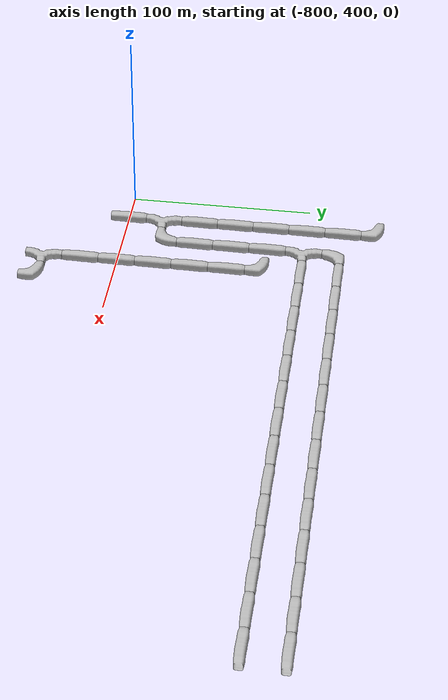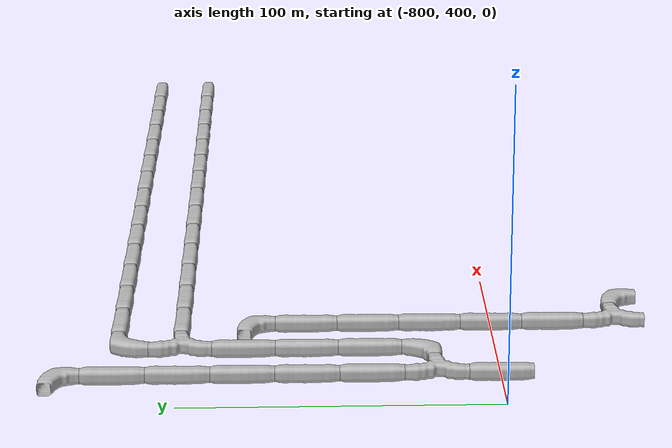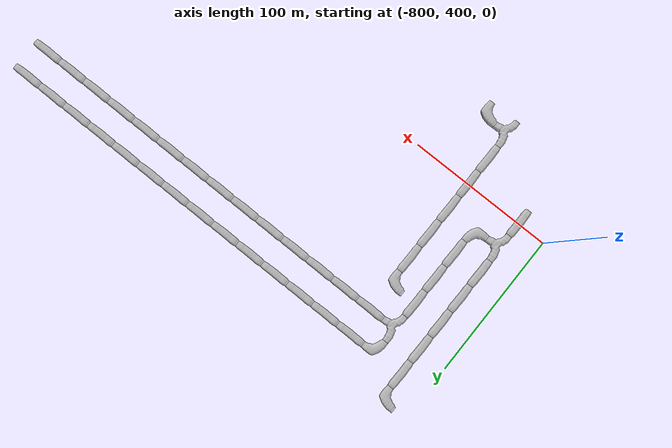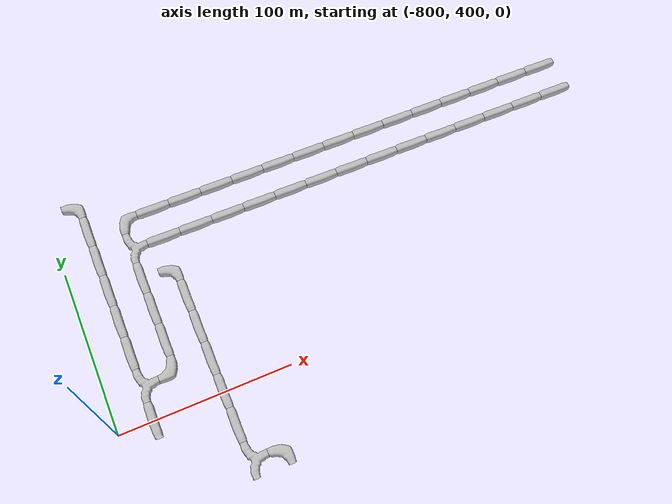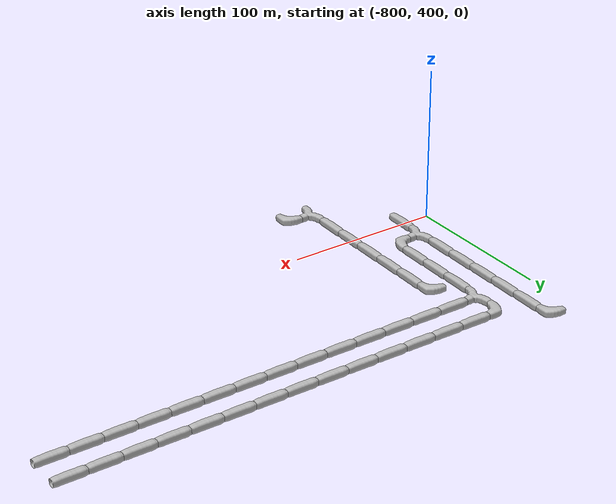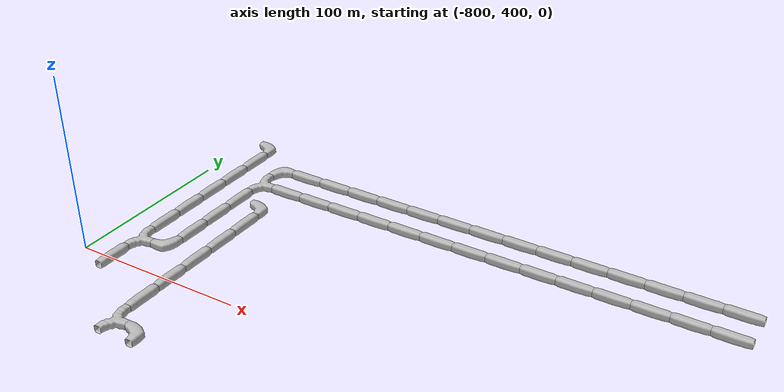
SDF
<sdf version="1.6">
 <world name="cave_16000">
  <include>
   <static>true</static>
   <name>cave_-24_25</name>
   <pose>-480 500 0 0 0 1.5707963267948966</pose>
   <uri>model://cave_straight_20m</uri>
  </include>
  <include>
   <static>true</static>
   <name>cave_-25_25</name>
   <pose>-500 500 0 0 0 1.5707963267948966</pose>
   <uri>model://cave_straight_20m</uri>
  </include>
  <include>
   <static>true</static>
   <name>cave_-26_25</name>
   <pose>-520 500 0 0 0 1.5707963267948966</pose>
   <uri>model://cave_straight_20m</uri>
  </include>
  <include>
   <static>true</static>
   <name>cave_-27_25</name>
   <pose>-540 500 0 0 0 1.5707963267948966</pose>
   <uri>model://cave_straight_20m</uri>
  </include>
  <include>
   <static>true</static>
   <name>cave_-28_25</name>
   <pose>-560 500 0 0 0 1.5707963267948966</pose>
   <uri>model://cave_straight_20m</uri>
  </include>
  <include>
   <static>true</static>
   <name>cave_-29_25</name>
   <pose>-580 500 0 0 0 1.5707963267948966</pose>
   <uri>model://cave_straight_20m</uri>
  </include>
  <include>
   <static>true</static>
   <name>cave_-30_25</name>
   <pose>-600 500 0 0 0 1.5707963267948966</pose>
   <uri>model://cave_straight_20m</uri>
  </include>
  <include>
   <static>true</static>
   <name>cave_-31_25</name>
   <pose>-620 500 0 0 0 1.5707963267948966</pose>
   <uri>model://cave_straight_20m</uri>
  </include>
  <include>
   <static>true</static>
   <name>cave_-32_25</name>
   <pose>-640 500 0 0 0 1.5707963267948966</pose>
   <uri>model://cave_straight_20m</uri>
  </include>
  <include>
   <static>true</static>
   <name>cave_-33_25</name>
   <pose>-660 500 0 0 0 1.5707963267948966</pose>
   <uri>model://cave_straight_20m</uri>
  </include>
  <include>
   <static>true</static>
   <name>cave_-34_25</name>
   <pose>-680 500 0 0 0 1.5707963267948966</pose>
   <uri>model://cave_straight_20m</uri>
  </include>
  <include>
   <static>true</static>
   <name>cave_-35_25</name>
   <pose>-700 500 0 0 0 1.5707963267948966</pose>
   <uri>model://cave_straight_20m</uri>
  </include>
  <include>
   <static>true</static>
   <name>cave_-36_25</name>
   <pose>-720 500 0 0 0 1.5707963267948966</pose>
   <uri>model://cave_straight_20m</uri>
  </include>
  <include>
   <static>true</static>
   <name>cave_-37_25</name>
   <pose>-740 500 0 0 0 1.5707963267948966</pose>
   <uri>model://cave_straight_20m</uri>
  </include>
  <include>
   <static>true</static>
   <name>cave_-38_25</name>
   <pose>-760 500 0 0 0 -1.5707963267948966</pose>
   <uri>model://cave_3way_20m</uri>
  </include>
  <include>
   <static>true</static>
   <name>cave_-38_24</name>
   <pose>-760 480 0 0 0 0.0</pose>
   <uri>model://cave_straight_20m</uri>
  </include>
  <include>
   <static>true</static>
   <name>cave_-38_23</name>
   <pose>-760 460 0 0 0 0.0</pose>
   <uri>model://cave_straight_20m</uri>
  </include>
  <include>
   <static>true</static>
   <name>cave_-38_22</name>
   <pose>-760 440 0 0 0 0.0</pose>
   <uri>model://cave_straight_20m</uri>
  </include>
  <include>
   <static>true</static>
   <name>cave_-38_21</name>
   <pose>-760 420 0 0 0 1.5707963267948966</pose>
   <uri>model://cave_L_20m</uri>
  </include>
  <include>
   <static>true</static>
   <name>cave_-39_21</name>
   <pose>-780 420 0 0 0 -1.5707963267948966</pose>
   <uri>model://cave_3way_20m</uri>
  </include>
  <include>
   <static>true</static>
   <name>cave_-39_20</name>
   <pose>-780 400 0 0 0 0.0</pose>
   <uri>model://cave_straight_20m</uri>
  </include>
  <include>
   <static>true</static>
   <name>cave_-37_18</name>
   <pose>-740 360 0 0 0 -1.5707963267948966</pose>
   <uri>model://cave_3way_20m</uri>
  </include>
  <include>
   <static>true</static>
   <name>cave_-36_18</name>
   <pose>-720 360 0 0 0 3.141592653589793</pose>
   <uri>model://cave_L_20m</uri>
  </include>
  <include>
   <static>true</static>
   <name>cave_-37_19</name>
   <pose>-740 380 0 0 0 0.0</pose>
   <uri>model://cave_straight_20m</uri>
  </include>
  <include>
   <static>true</static>
   <name>cave_-37_20</name>
   <pose>-740 400 0 0 0 0.0</pose>
   <uri>model://cave_straight_20m</uri>
  </include>
  <include>
   <static>true</static>
   <name>cave_-37_21</name>
   <pose>-740 420 0 0 0 0.0</pose>
   <uri>model://cave_straight_20m</uri>
  </include>
  <include>
   <static>true</static>
   <name>cave_-37_22</name>
   <pose>-740 440 0 0 0 0.0</pose>
   <uri>model://cave_straight_20m</uri>
  </include>
  <include>
   <static>true</static>
   <name>cave_-37_23</name>
   <pose>-740 460 0 0 0 0.0</pose>
   <uri>model://cave_straight_20m</uri>
  </include>
  <include>
   <static>true</static>
   <name>cave_-37_24</name>
   <pose>-740 480 0 0 0 3.141592653589793</pose>
   <uri>model://cave_L_20m</uri>
  </include>
  <include>
   <static>true</static>
   <name>cave_-39_22</name>
   <pose>-780 440 0 0 0 0.0</pose>
   <uri>model://cave_straight_20m</uri>
  </include>
  <include>
   <static>true</static>
   <name>cave_-39_23</name>
   <pose>-780 460 0 0 0 0.0</pose>
   <uri>model://cave_straight_20m</uri>
  </include>
  <include>
   <static>true</static>
   <name>cave_-39_24</name>
   <pose>-780 480 0 0 0 0.0</pose>
   <uri>model://cave_straight_20m</uri>
  </include>
  <include>
   <static>true</static>
   <name>cave_-39_25</name>
   <pose>-780 500 0 0 0 0.0</pose>
   <uri>model://cave_straight_20m</uri>
  </include>
  <include>
   <static>true</static>
   <name>cave_-39_26</name>
   <pose>-780 520 0 0 0 0.0</pose>
   <uri>model://cave_straight_20m</uri>
  </include>
  <include>
   <static>true</static>
   <name>cave_-39_27</name>
   <pose>-780 540 0 0 0 3.141592653589793</pose>
   <uri>model://cave_L_20m</uri>
  </include>
  <include>
   <static>true</static>
   <name>cave_-38_26</name>
   <pose>-760 520 0 0 0 -1.5707963267948966</pose>
   <uri>model://cave_L_20m</uri>
  </include>
  <include>
   <static>true</static>
   <name>cave_-37_26</name>
   <pose>-740 520 0 0 0 1.5707963267948966</pose>
   <uri>model://cave_straight_20m</uri>
  </include>
  <include>
   <static>true</static>
   <name>cave_-36_26</name>
   <pose>-720 520 0 0 0 1.5707963267948966</pose>
   <uri>model://cave_straight_20m</uri>
  </include>
  <include>
   <static>true</static>
   <name>cave_-35_26</name>
   <pose>-700 520 0 0 0 1.5707963267948966</pose>
   <uri>model://cave_straight_20m</uri>
  </include>
  <include>
   <static>true</static>
   <name>cave_-34_26</name>
   <pose>-680 520 0 0 0 1.5707963267948966</pose>
   <uri>model://cave_straight_20m</uri>
  </include>
  <include>
   <static>true</static>
   <name>cave_-33_26</name>
   <pose>-660 520 0 0 0 1.5707963267948966</pose>
   <uri>model://cave_straight_20m</uri>
  </include>
  <include>
   <static>true</static>
   <name>cave_-32_26</name>
   <pose>-640 520 0 0 0 1.5707963267948966</pose>
   <uri>model://cave_straight_20m</uri>
  </include>
  <include>
   <static>true</static>
   <name>cave_-31_26</name>
   <pose>-620 520 0 0 0 1.5707963267948966</pose>
   <uri>model://cave_straight_20m</uri>
  </include>
  <include>
   <static>true</static>
   <name>cave_-30_26</name>
   <pose>-600 520 0 0 0 1.5707963267948966</pose>
   <uri>model://cave_straight_20m</uri>
  </include>
  <include>
   <static>true</static>
   <name>cave_-29_26</name>
   <pose>-580 520 0 0 0 1.5707963267948966</pose>
   <uri>model://cave_straight_20m</uri>
  </include>
  <include>
   <static>true</static>
   <name>cave_-28_26</name>
   <pose>-560 520 0 0 0 1.5707963267948966</pose>
   <uri>model://cave_straight_20m</uri>
  </include>
  <include>
   <static>true</static>
   <name>cave_-27_26</name>
   <pose>-540 520 0 0 0 1.5707963267948966</pose>
   <uri>model://cave_straight_20m</uri>
  </include>
  <include>
   <static>true</static>
   <name>cave_-26_26</name>
   <pose>-520 520 0 0 0 1.5707963267948966</pose>
   <uri>model://cave_straight_20m</uri>
  </include>
  <include>
   <static>true</static>
   <name>cave_-25_26</name>
   <pose>-500 520 0 0 0 1.5707963267948966</pose>
   <uri>model://cave_straight_20m</uri>
  </include>
  <include>
   <static>true</static>
   <name>cave_-24_26</name>
   <pose>-480 520 0 0 0 1.5707963267948966</pose>
   <uri>model://cave_straight_20m</uri>
  </include>
 </world>
</sdf>
